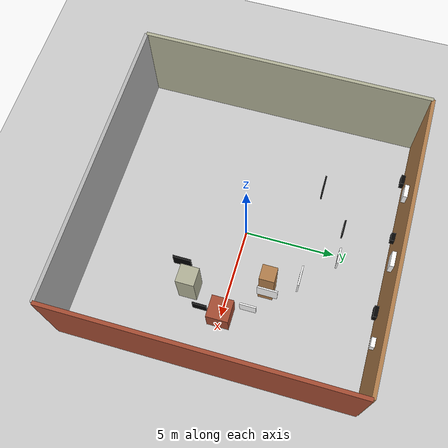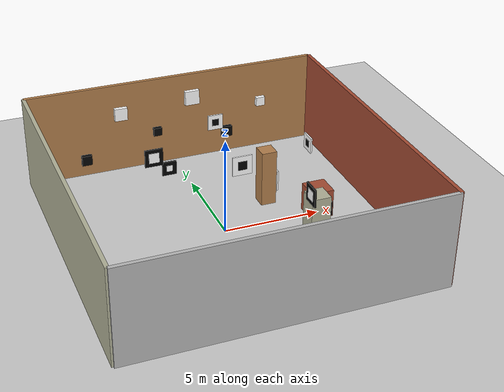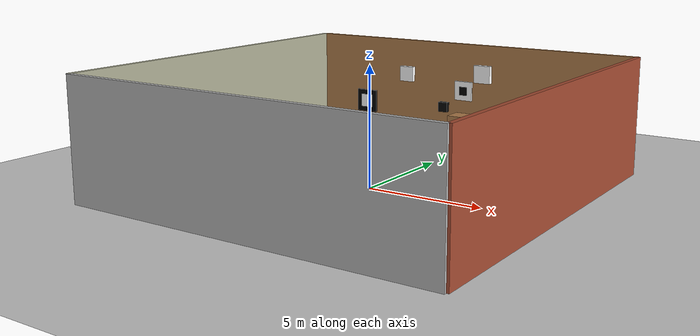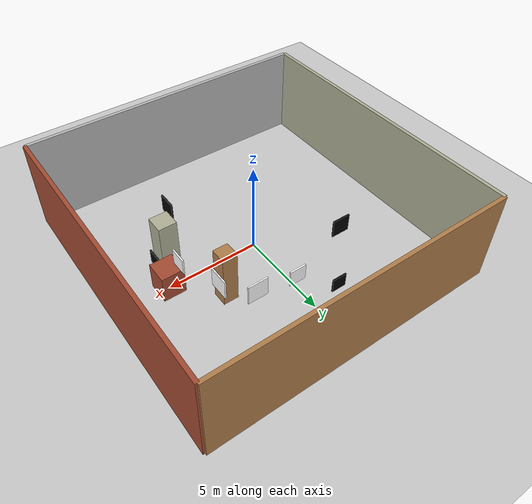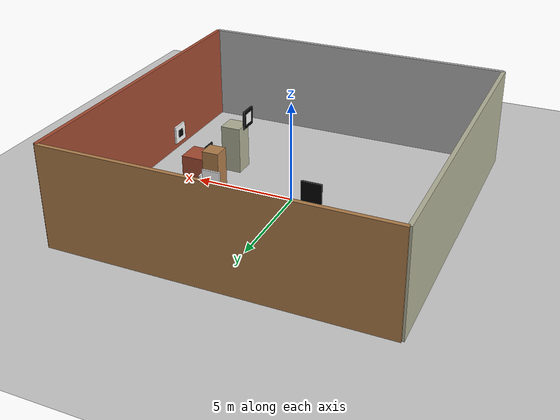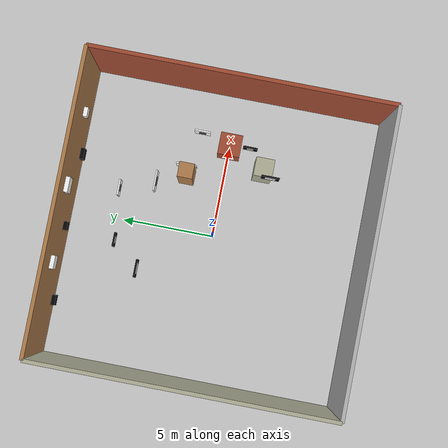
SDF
<?xml version="1.0"?>
<sdf version="1.6">
  <!-- PX4 Gazebo Classic sitl_run.sh spawns the vehicle into the world named
       "default".  Keep that contract even though this is a custom scene. -->
  <world name="default">
    <include><uri>model://sun</uri></include>
    <include><uri>model://ground_plane</uri></include>
    <include><uri>model://asphalt_plane</uri></include>
    <physics name="default_physics" type="ode">
      <gravity>0 0 -9.8066</gravity>
      <max_step_size>0.004</max_step_size>
      <real_time_factor>1</real_time_factor>
      <real_time_update_rate>250</real_time_update_rate>
    </physics>

    <!-- Textured walls surround the safe flight volume.  The stock empty
         world has almost no corner features for a forward monocular camera. -->
    <model name="east_feature_wall"><static>true</static><pose>8 0 2.5 0 0 0</pose><link name="link">
      <collision name="c"><geometry><box><size>0.2 16 5</size></box></geometry></collision>
      <visual name="v"><geometry><box><size>0.2 16 5</size></box></geometry><material><script><uri>file://media/materials/scripts/gazebo.material</uri><name>Gazebo/Bricks</name></script></material></visual>
    </link></model>
    <model name="west_feature_wall"><static>true</static><pose>-8 0 2.5 0 0 0</pose><link name="link">
      <collision name="c"><geometry><box><size>0.2 16 5</size></box></geometry></collision>
      <visual name="v"><geometry><box><size>0.2 16 5</size></box></geometry><material><script><uri>file://media/materials/scripts/gazebo.material</uri><name>Gazebo/Residential</name></script></material></visual>
    </link></model>
    <model name="north_feature_wall"><static>true</static><pose>0 8 2.5 0 0 0</pose><link name="link">
      <collision name="c"><geometry><box><size>16 0.2 5</size></box></geometry></collision>
      <visual name="v"><geometry><box><size>16 0.2 5</size></box></geometry><material><script><uri>file://media/materials/scripts/gazebo.material</uri><name>Gazebo/Wood</name></script></material></visual>
    </link></model>
    <model name="south_feature_wall"><static>true</static><pose>0 -8 2.5 0 0 0</pose><link name="link">
      <collision name="c"><geometry><box><size>16 0.2 5</size></box></geometry></collision>
      <visual name="v"><geometry><box><size>16 0.2 5</size></box></geometry><material><script><uri>file://media/materials/scripts/gazebo.material</uri><name>Gazebo/BuildingFrame</name></script></material></visual>
    </link></model>
    <!-- Non-coplanar landmarks at several depths prevent planar-wall
         degeneracy in the monocular five-point initialization. -->
    <model name="feature_column_near_left"><static>true</static><pose>3 2 1.5 0 0 0</pose><link name="link">
      <collision name="c"><geometry><box><size>0.8 0.8 3</size></box></geometry></collision>
      <visual name="v"><geometry><box><size>0.8 0.8 3</size></box></geometry><material><script><uri>file://media/materials/scripts/gazebo.material</uri><name>Gazebo/WoodPallet</name></script></material></visual>
    </link></model>
    <model name="feature_column_near_right"><static>true</static><pose>4 -2 1.2 0 0 0</pose><link name="link">
      <collision name="c"><geometry><box><size>1.0 1.0 2.4</size></box></geometry></collision>
      <visual name="v"><geometry><box><size>1.0 1.0 2.4</size></box></geometry><material><script><uri>file://media/materials/scripts/gazebo.material</uri><name>Gazebo/Residential</name></script></material></visual>
    </link></model>
    <model name="feature_block_mid"><static>true</static><pose>5 0 0.75 0 0 0</pose><link name="link">
      <collision name="c"><geometry><box><size>1.2 1.2 1.5</size></box></geometry></collision>
      <visual name="v"><geometry><box><size>1.2 1.2 1.5</size></box></geometry><material><script><uri>file://media/materials/scripts/gazebo.material</uri><name>Gazebo/Bricks</name></script></material></visual>
    </link></model>
    <model name="north_marker_1"><static>true</static><pose>-5 7.72 1.0 0 0 0</pose><link name="link"><visual name="v"><geometry><box><size>0.55 0.22 0.55</size></box></geometry><material><ambient>0.02 0.02 0.02 1</ambient><diffuse>0.02 0.02 0.02 1</diffuse></material></visual><collision name="c"><geometry><box><size>0.55 0.22 0.55</size></box></geometry></collision></link></model>
    <model name="north_marker_2"><static>true</static><pose>-3 7.72 3.4 0 0 0</pose><link name="link"><visual name="v"><geometry><box><size>0.70 0.22 0.70</size></box></geometry><material><ambient>1 1 1 1</ambient><diffuse>1 1 1 1</diffuse></material></visual><collision name="c"><geometry><box><size>0.70 0.22 0.70</size></box></geometry></collision></link></model>
    <model name="north_marker_3"><static>true</static><pose>-1 7.72 2.0 0 0 0</pose><link name="link"><visual name="v"><geometry><box><size>0.45 0.22 0.45</size></box></geometry><material><ambient>0.02 0.02 0.02 1</ambient><diffuse>0.02 0.02 0.02 1</diffuse></material></visual><collision name="c"><geometry><box><size>0.45 0.22 0.45</size></box></geometry></collision></link></model>
    <model name="north_marker_4"><static>true</static><pose>1 7.72 3.7 0 0 0</pose><link name="link"><visual name="v"><geometry><box><size>0.80 0.22 0.80</size></box></geometry><material><ambient>1 1 1 1</ambient><diffuse>1 1 1 1</diffuse></material></visual><collision name="c"><geometry><box><size>0.80 0.22 0.80</size></box></geometry></collision></link></model>
    <model name="north_marker_5"><static>true</static><pose>3 7.72 1.3 0 0 0</pose><link name="link"><visual name="v"><geometry><box><size>0.60 0.22 0.60</size></box></geometry><material><ambient>0.02 0.02 0.02 1</ambient><diffuse>0.02 0.02 0.02 1</diffuse></material></visual><collision name="c"><geometry><box><size>0.60 0.22 0.60</size></box></geometry></collision></link></model>
    <model name="north_marker_6"><static>true</static><pose>5 7.72 2.8 0 0 0</pose><link name="link"><visual name="v"><geometry><box><size>0.50 0.22 0.50</size></box></geometry><material><ambient>1 1 1 1</ambient><diffuse>1 1 1 1</diffuse></material></visual><collision name="c"><geometry><box><size>0.50 0.22 0.50</size></box></geometry></collision></link></model>
    <model name="vio_depth_panel_1"><static>true</static><pose>-2.5 3.6 2.8 0 0 0</pose><link name="link"><visual name="black"><pose>0 -0.04 0 0 0 0</pose><geometry><box><size>0.95 0.08 0.95</size></box></geometry><material><ambient>0.01 0.01 0.01 1</ambient><diffuse>0.01 0.01 0.01 1</diffuse></material></visual><visual name="white"><pose>0 -0.085 0 0 0 0</pose><geometry><box><size>0.55 0.02 0.55</size></box></geometry><material><ambient>1 1 1 1</ambient><diffuse>1 1 1 1</diffuse></material></visual></link></model>
    <model name="vio_depth_panel_2"><static>true</static><pose>2.3 3.6 1.4 0 0 0</pose><link name="link"><visual name="white"><pose>0 -0.04 0 0 0 0</pose><geometry><box><size>1.10 0.08 1.10</size></box></geometry><material><ambient>1 1 1 1</ambient><diffuse>1 1 1 1</diffuse></material></visual><visual name="black"><pose>0 -0.085 0 0 0 0</pose><geometry><box><size>0.50 0.02 0.50</size></box></geometry><material><ambient>0.01 0.01 0.01 1</ambient><diffuse>0.01 0.01 0.01 1</diffuse></material></visual></link></model>
    <model name="vio_depth_panel_3"><static>true</static><pose>-1.2 5.2 1.1 0 0 0</pose><link name="link"><visual name="black"><pose>0 -0.04 0 0 0 0</pose><geometry><box><size>0.78 0.08 0.78</size></box></geometry><material><ambient>0.01 0.01 0.01 1</ambient><diffuse>0.01 0.01 0.01 1</diffuse></material></visual><visual name="white"><pose>0 -0.085 0 0 0 0</pose><geometry><box><size>0.34 0.02 0.34</size></box></geometry><material><ambient>1 1 1 1</ambient><diffuse>1 1 1 1</diffuse></material></visual></link></model>
    <model name="vio_depth_panel_4"><static>true</static><pose>1.4 5.2 3.35 0 0 0</pose><link name="link"><visual name="white"><pose>0 -0.04 0 0 0 0</pose><geometry><box><size>0.82 0.08 0.82</size></box></geometry><material><ambient>1 1 1 1</ambient><diffuse>1 1 1 1</diffuse></material></visual><visual name="black"><pose>0 -0.085 0 0 0 0</pose><geometry><box><size>0.36 0.02 0.36</size></box></geometry><material><ambient>0.01 0.01 0.01 1</ambient><diffuse>0.01 0.01 0.01 1</diffuse></material></visual></link></model>
    <!-- The iris_fpv_cam optical axis starts along +X.  These are the
         corresponding foreground panels actually in the startup FOV. -->
    <model name="vio_east_depth_panel_1"><static>true</static><pose>3.5 -2.4 2.7 0 0 0</pose><link name="link"><visual name="black"><pose>-0.04 0 0 0 0 0</pose><geometry><box><size>0.08 0.95 0.95</size></box></geometry><material><ambient>0.01 0.01 0.01 1</ambient><diffuse>0.01 0.01 0.01 1</diffuse></material></visual><visual name="white"><pose>-0.085 0 0 0 0 0</pose><geometry><box><size>0.02 0.55 0.55</size></box></geometry><material><ambient>1 1 1 1</ambient><diffuse>1 1 1 1</diffuse></material></visual></link></model>
    <model name="vio_east_depth_panel_2"><static>true</static><pose>3.5 2.1 1.3 0 0 0</pose><link name="link"><visual name="white"><pose>-0.04 0 0 0 0 0</pose><geometry><box><size>0.08 1.10 1.10</size></box></geometry><material><ambient>1 1 1 1</ambient><diffuse>1 1 1 1</diffuse></material></visual><visual name="black"><pose>-0.085 0 0 0 0 0</pose><geometry><box><size>0.02 0.50 0.50</size></box></geometry><material><ambient>0.01 0.01 0.01 1</ambient><diffuse>0.01 0.01 0.01 1</diffuse></material></visual></link></model>
    <model name="vio_east_depth_panel_3"><static>true</static><pose>5.1 -1.1 1.05 0 0 0</pose><link name="link"><visual name="black"><pose>-0.04 0 0 0 0 0</pose><geometry><box><size>0.08 0.78 0.78</size></box></geometry><material><ambient>0.01 0.01 0.01 1</ambient><diffuse>0.01 0.01 0.01 1</diffuse></material></visual><visual name="white"><pose>-0.085 0 0 0 0 0</pose><geometry><box><size>0.02 0.34 0.34</size></box></geometry><material><ambient>1 1 1 1</ambient><diffuse>1 1 1 1</diffuse></material></visual></link></model>
    <model name="vio_east_depth_panel_4"><static>true</static><pose>5.1 1.5 3.25 0 0 0</pose><link name="link"><visual name="white"><pose>-0.04 0 0 0 0 0</pose><geometry><box><size>0.08 0.82 0.82</size></box></geometry><material><ambient>1 1 1 1</ambient><diffuse>1 1 1 1</diffuse></material></visual><visual name="black"><pose>-0.085 0 0 0 0 0</pose><geometry><box><size>0.02 0.36 0.36</size></box></geometry><material><ambient>0.01 0.01 0.01 1</ambient><diffuse>0.01 0.01 0.01 1</diffuse></material></visual></link></model>
  </world>
</sdf>
